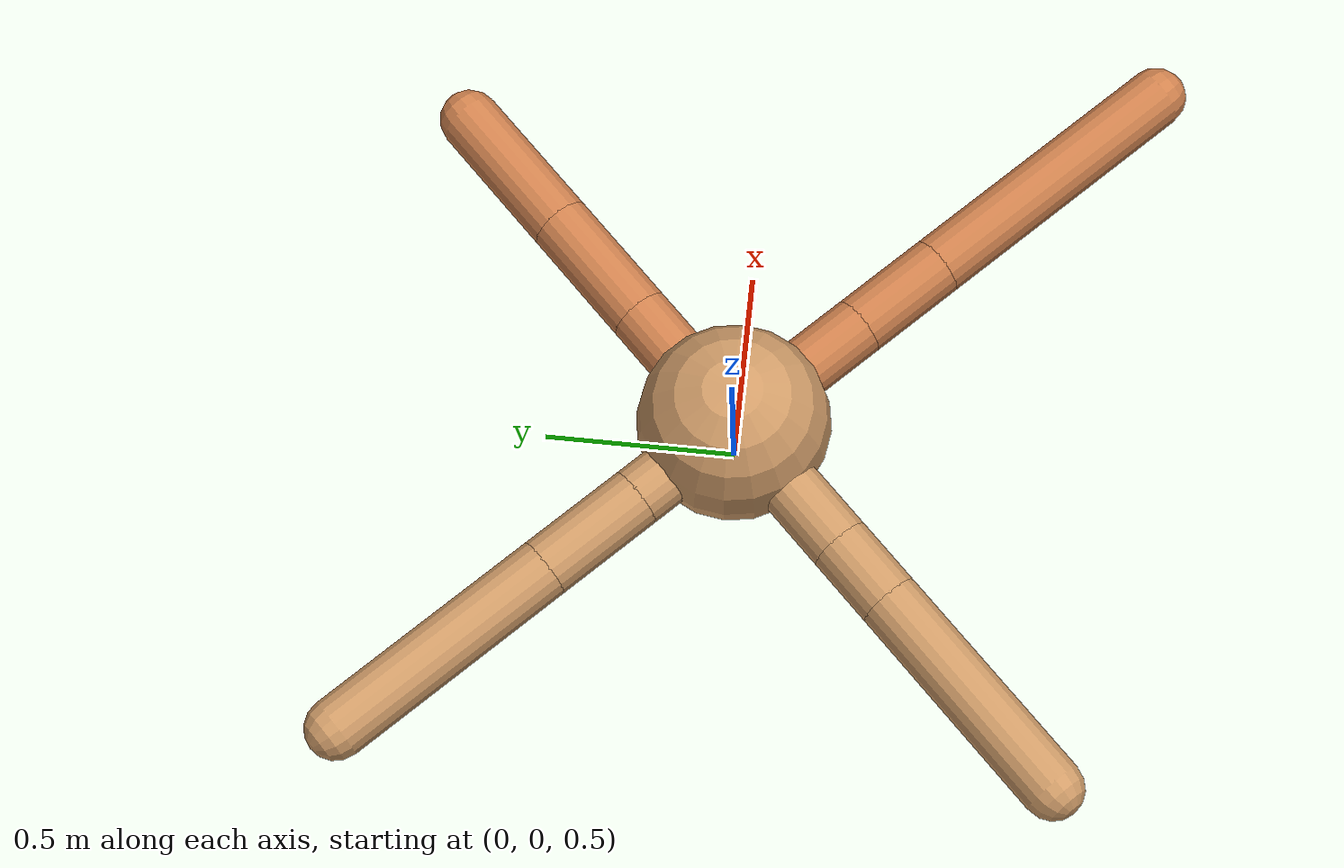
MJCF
<mujoco model="ant">
  <compiler angle="degree" coordinate="local" inertiafromgeom="true" />
  <option integrator="RK4" timestep="0.01" />
  <custom>
    <numeric data="0.0 0.0 0.55 1.0 0.0 0.0 0.0 0.0 1.0 0.0 -1.0 0.0 -1.0 0.0 1.0" name="init_qpos" />
  </custom>
  <default>
    <joint armature="1" damping="1" limited="true" />
    <geom conaffinity="0" condim="3" density="5.0" friction="1.5 0.1 0.1" margin="0.01" rgba="0.8 0.6 0.4 1" />
  </default>
  <worldbody>
    <body name="torso" pos="0 0 0.75">
      <geom name="torso_geom" pos="0 0 0" size="0.25" type="sphere" />

      <body name="front_left_leg" pos="0 0 0">
        <geom fromto="0.0 0.0 0.0 0.271260742333539 0.271260742333539 0.0" name="aux_1_geom" size="0.08" type="capsule" rgba=".8 .5 .3 1" />
        <body name="aux_1" pos="0.271260742333539 0.271260742333539 0.0">
          <joint axis="0 0 1" name="hip_1" pos="0.0 0.0 0.0" range="-40 40" type="hinge" />
          <geom fromto="0.0 0.0 0.0 0.23472972495033853 0.23472972495033853 0.0" name="left_leg_geom" size="0.08" type="capsule" rgba=".8 .5 .3 1" />
          <body pos="0.23472972495033853 0.23472972495033853 0.0" name="front_left_foot">
            <joint axis="-1 1 0" name="ankle_1" pos="0.0 0.0 0.0" range="30 100" type="hinge" />
            <geom fromto="0.0 0.0 0.0 0.275451953090841 0.275451953090841 0.0" name="left_ankle_geom" size="0.08" type="capsule" rgba=".8 .5 .3 1" />
          </body>
        </body>
      </body>
      <body name="front_right_leg" pos="0 0 0">
        <geom fromto="0.0 0.0 0.0 -0.22508339053758838 0.22508339053758838 0.0" name="aux_2_geom" size="0.08" type="capsule" />
        <body name="aux_2" pos="-0.22508339053758838 0.22508339053758838 0.0">
          <joint axis="0 0 1" name="hip_2" pos="0.0 0.0 0.0" range="-40 40" type="hinge" />
          <geom fromto="0.0 0.0 0.0 -0.20691333949322024 0.20691333949322024 0.0" name="right_leg_geom" size="0.08" type="capsule" />
          <body pos="-0.20691333949322024 0.20691333949322024 0.0" name="front_right_foot">
            <joint axis="1 1 0" name="ankle_2" pos="0.0 0.0 0.0" range="-100 -30" type="hinge" />
            <geom fromto="0.0 0.0 0.0 -0.4576017373980589 0.4576017373980589 0.0" name="right_ankle_geom" size="0.08" type="capsule" />
          </body>
        </body>
      </body>
      <body name="left_back_leg" pos="0 0 0">
        <geom fromto="0.0 0.0 0.0 -0.29786948430654564 -0.29786948430654564 0.0" name="aux_3_geom" size="0.08" type="capsule" />
        <body name="aux_3" pos="-0.29786948430654564 -0.29786948430654564 0.0">
          <joint axis="0 0 1" name="hip_3" pos="0.0 0.0 0.0" range="-40 40" type="hinge" />
          <geom fromto="0.0 0.0 0.0 -0.1338622263581021 -0.1338622263581021 0.0" name="back_leg_geom" size="0.08" type="capsule" />
          <body pos="-0.1338622263581021 -0.1338622263581021 0.0" name="left_back_foot">
            <joint axis="-1 1 0" name="ankle_3" pos="0.0 0.0 0.0" range="-100 -30" type="hinge" />
            <geom fromto="0.0 0.0 0.0 -0.4365398971964807 -0.4365398971964807 0.0" name="third_ankle_geom" size="0.08" type="capsule" />
          </body>
        </body>
      </body>
      <body name="right_back_leg" pos="0 0 0">
        <geom fromto="0.0 0.0 0.0 0.29299784036994797 -0.29299784036994797 0.0" name="aux_4_geom" size="0.08" type="capsule" rgba=".8 .5 .3 1" />
        <body name="aux_4" pos="0.29299784036994797 -0.29299784036994797 0.0">
          <joint axis="0 0 1" name="hip_4" pos="0.0 0.0 0.0" range="-40 40" type="hinge" />
          <geom fromto="0.0 0.0 0.0 0.18715330799525445 -0.18715330799525445 0.0" name="rightback_leg_geom" size="0.08" type="capsule" rgba=".8 .5 .3 1" />
          <body pos="0.18715330799525445 -0.18715330799525445 0.0" name="right_back_foot">
            <joint axis="1 1 0" name="ankle_4" pos="0.0 0.0 0.0" range="30 100" type="hinge" />
            <geom fromto="0.0 0.0 0.0 0.5427570060138158 -0.5427570060138158 0.0" name="fourth_ankle_geom" size="0.08" type="capsule" rgba=".8 .5 .3 1" />
          </body>
        </body>
      </body>
    </body>
  </worldbody>
  <actuator>
    <motor ctrllimited="true" ctrlrange="-1.0 1.0" joint="hip_4" gear="150" />
    <motor ctrllimited="true" ctrlrange="-1.0 1.0" joint="ankle_4" gear="150" />
    <motor ctrllimited="true" ctrlrange="-1.0 1.0" joint="hip_1" gear="150" />
    <motor ctrllimited="true" ctrlrange="-1.0 1.0" joint="ankle_1" gear="150" />
    <motor ctrllimited="true" ctrlrange="-1.0 1.0" joint="hip_2" gear="150" />
    <motor ctrllimited="true" ctrlrange="-1.0 1.0" joint="ankle_2" gear="150" />
    <motor ctrllimited="true" ctrlrange="-1.0 1.0" joint="hip_3" gear="150" />
    <motor ctrllimited="true" ctrlrange="-1.0 1.0" joint="ankle_3" gear="150" />
  </actuator>
</mujoco>
